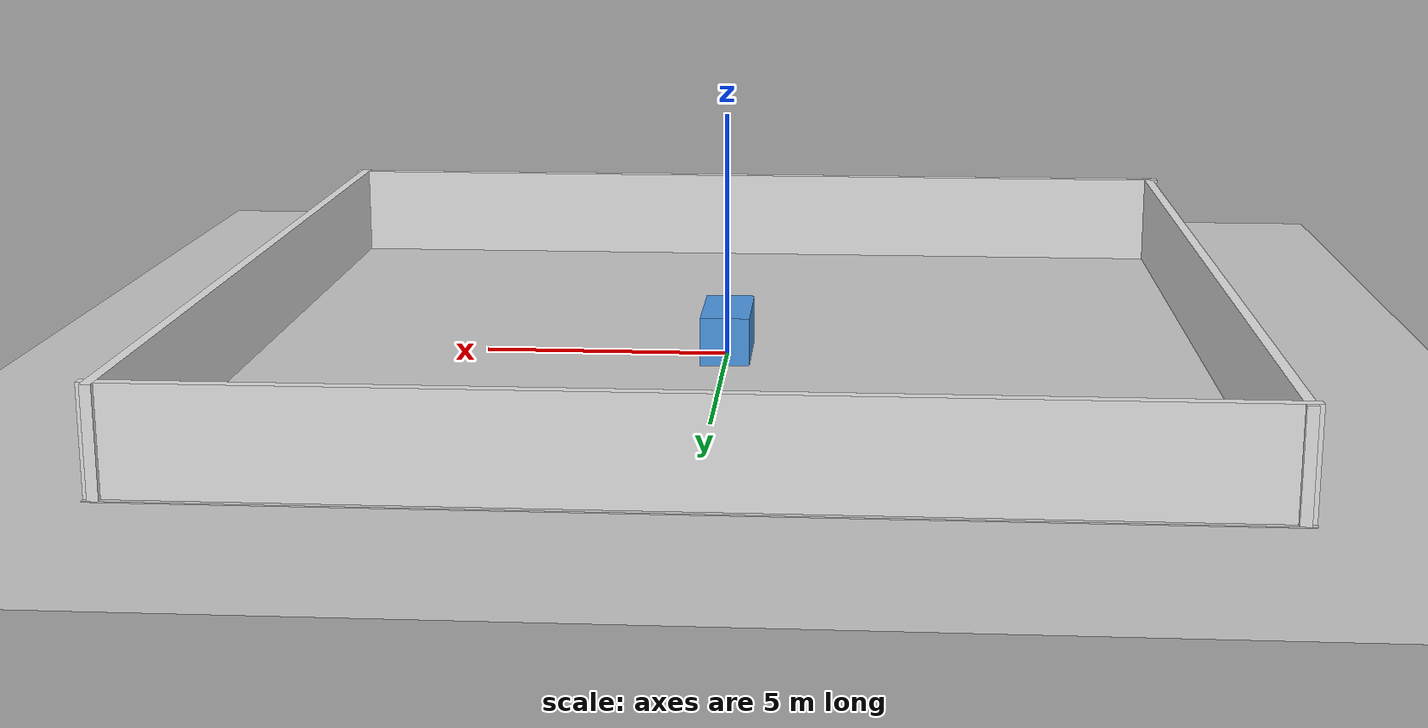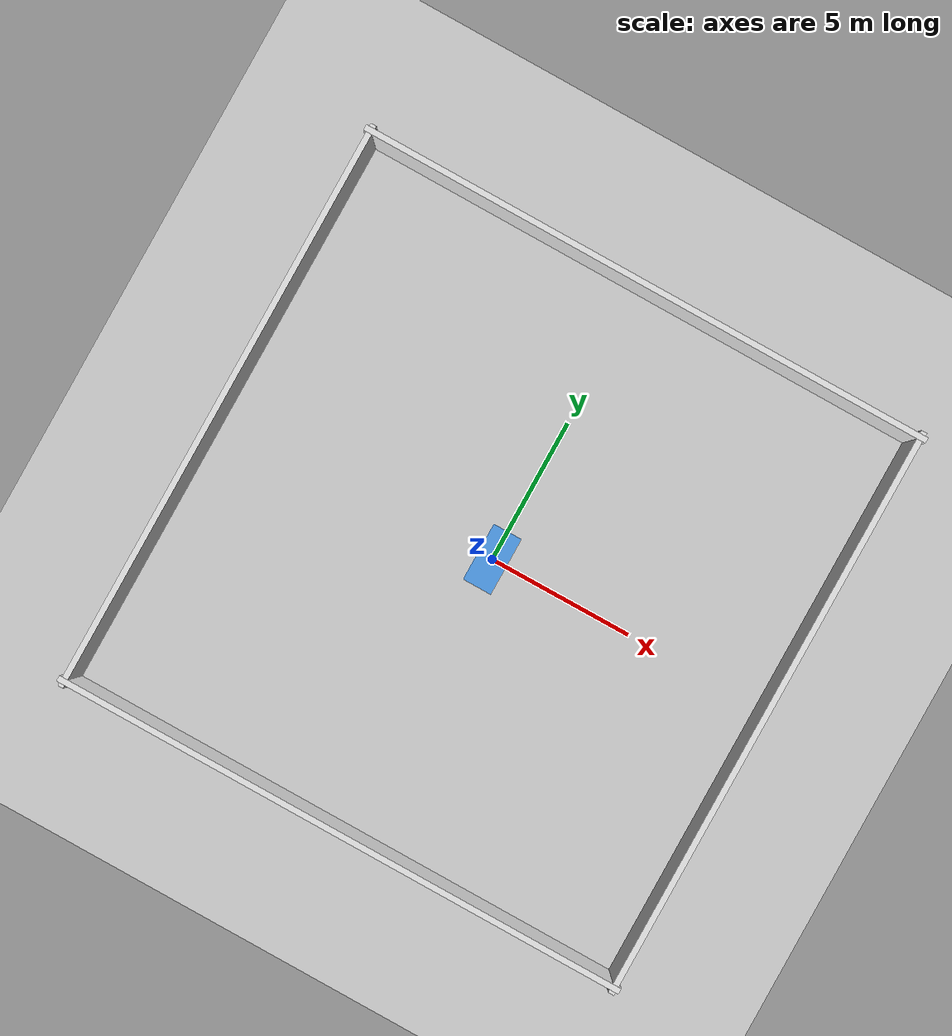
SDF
<?xml version="1.0"?>
<sdf version="1.6">
  <world name="hospital_demo">
    <include>
      <uri>model://sun</uri>
    </include>

    <include>
      <uri>model://ground_plane</uri>
    </include>

    <scene>
      <ambient>0.7 0.7 0.7 1</ambient>
      <background>0.9 0.9 0.9 1</background>
      <shadows>true</shadows>
    </scene>

    <physics type="ode">
      <max_step_size>0.001</max_step_size>
      <real_time_factor>1</real_time_factor>
      <real_time_update_rate>1000</real_time_update_rate>
    </physics>

    <model name="floor_markings">
      <static>true</static>
      <link name="link">
        <collision name="collision">
          <geometry>
            <box>
              <size>20 20 0.02</size>
            </box>
          </geometry>
        </collision>
        <visual name="visual">
          <geometry>
            <box>
              <size>20 20 0.02</size>
            </box>
          </geometry>
          <material>
            <ambient>0.8 0.8 0.8 1</ambient>
            <diffuse>0.8 0.8 0.8 1</diffuse>
            <specular>0.1 0.1 0.1 1</specular>
          </material>
        </visual>
      </link>
    </model>

    <model name="wall_north">
      <static>true</static>
      <pose>0 9.8 1 0 0 0</pose>
      <link name="link">
        <collision name="collision">
          <geometry>
            <box>
              <size>20 0.2 2</size>
            </box>
          </geometry>
        </collision>
        <visual name="visual">
          <geometry>
            <box>
              <size>20 0.2 2</size>
            </box>
          </geometry>
          <material>
            <ambient>0.9 0.9 0.9 1</ambient>
            <diffuse>0.9 0.9 0.9 1</diffuse>
          </material>
        </visual>
      </link>
    </model>

    <model name="wall_south">
      <static>true</static>
      <pose>0 -9.8 1 0 0 0</pose>
      <link name="link">
        <collision name="collision">
          <geometry>
            <box>
              <size>20 0.2 2</size>
            </box>
          </geometry>
        </collision>
        <visual name="visual">
          <geometry>
            <box>
              <size>20 0.2 2</size>
            </box>
          </geometry>
          <material>
            <ambient>0.9 0.9 0.9 1</ambient>
            <diffuse>0.9 0.9 0.9 1</diffuse>
          </material>
        </visual>
      </link>
    </model>

    <model name="wall_west">
      <static>true</static>
      <pose>-9.8 0 1 0 0 0</pose>
      <link name="link">
        <collision name="collision">
          <geometry>
            <box>
              <size>0.2 20 2</size>
            </box>
          </geometry>
        </collision>
        <visual name="visual">
          <geometry>
            <box>
              <size>0.2 20 2</size>
            </box>
          </geometry>
          <material>
            <ambient>0.9 0.9 0.9 1</ambient>
            <diffuse>0.9 0.9 0.9 1</diffuse>
          </material>
        </visual>
      </link>
    </model>

    <model name="wall_east">
      <static>true</static>
      <pose>9.8 0 1 0 0 0</pose>
      <link name="link">
        <collision name="collision">
          <geometry>
            <box>
              <size>0.2 20 2</size>
            </box>
          </geometry>
        </collision>
        <visual name="visual">
          <geometry>
            <box>
              <size>0.2 20 2</size>
            </box>
          </geometry>
          <material>
            <ambient>0.9 0.9 0.9 1</ambient>
            <diffuse>0.9 0.9 0.9 1</diffuse>
          </material>
        </visual>
      </link>
    </model>

    <model name="central_obstacle">
      <static>true</static>
      <pose>0 0 0.5 0 0 0</pose>
      <link name="link">
        <collision name="collision">
          <geometry>
            <box>
              <size>1 2 1</size>
            </box>
          </geometry>
        </collision>
        <visual name="visual">
          <geometry>
            <box>
              <size>1 2 1</size>
            </box>
          </geometry>
          <material>
            <ambient>0.3 0.6 0.9 1</ambient>
            <diffuse>0.3 0.6 0.9 1</diffuse>
            <specular>0.1 0.1 0.1 1</specular>
          </material>
        </visual>
      </link>
    </model>
  </world>
</sdf>
